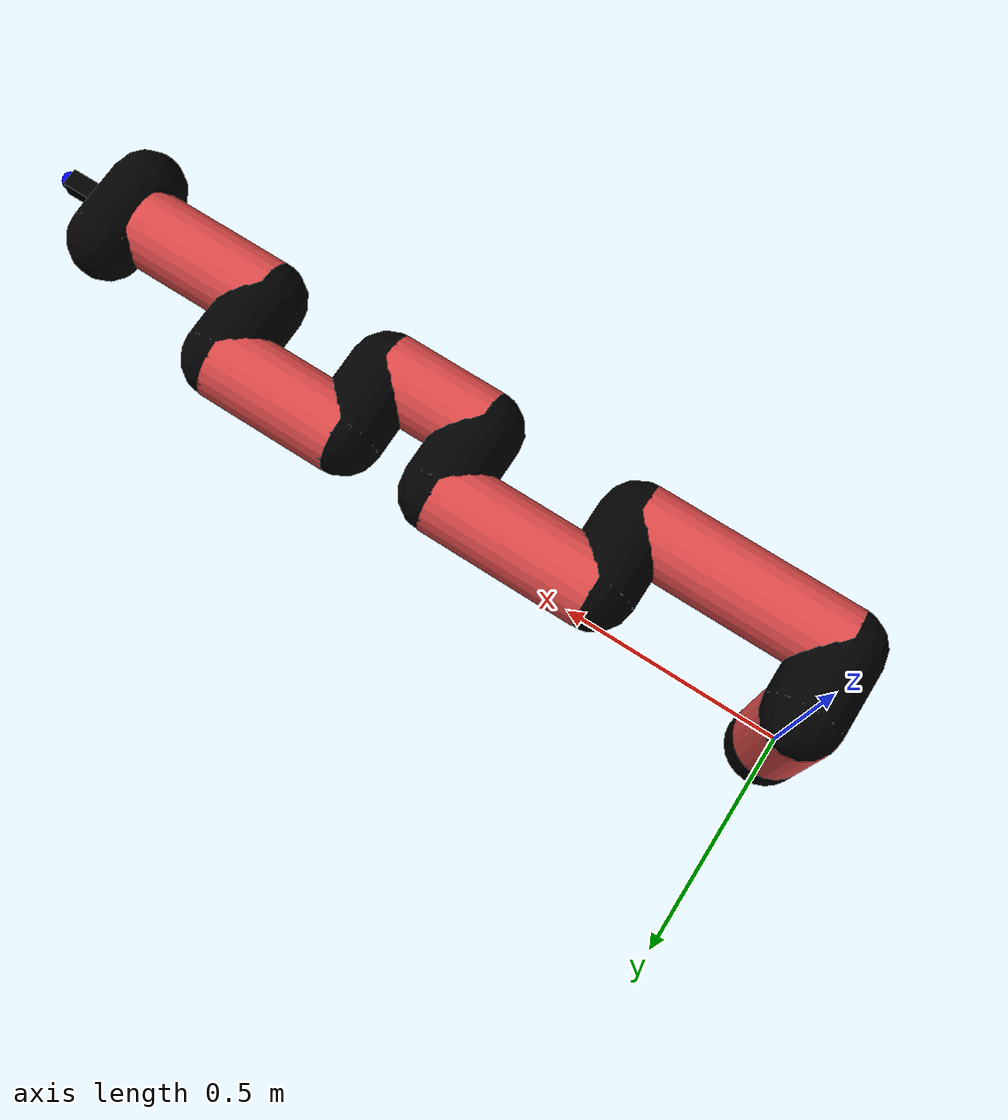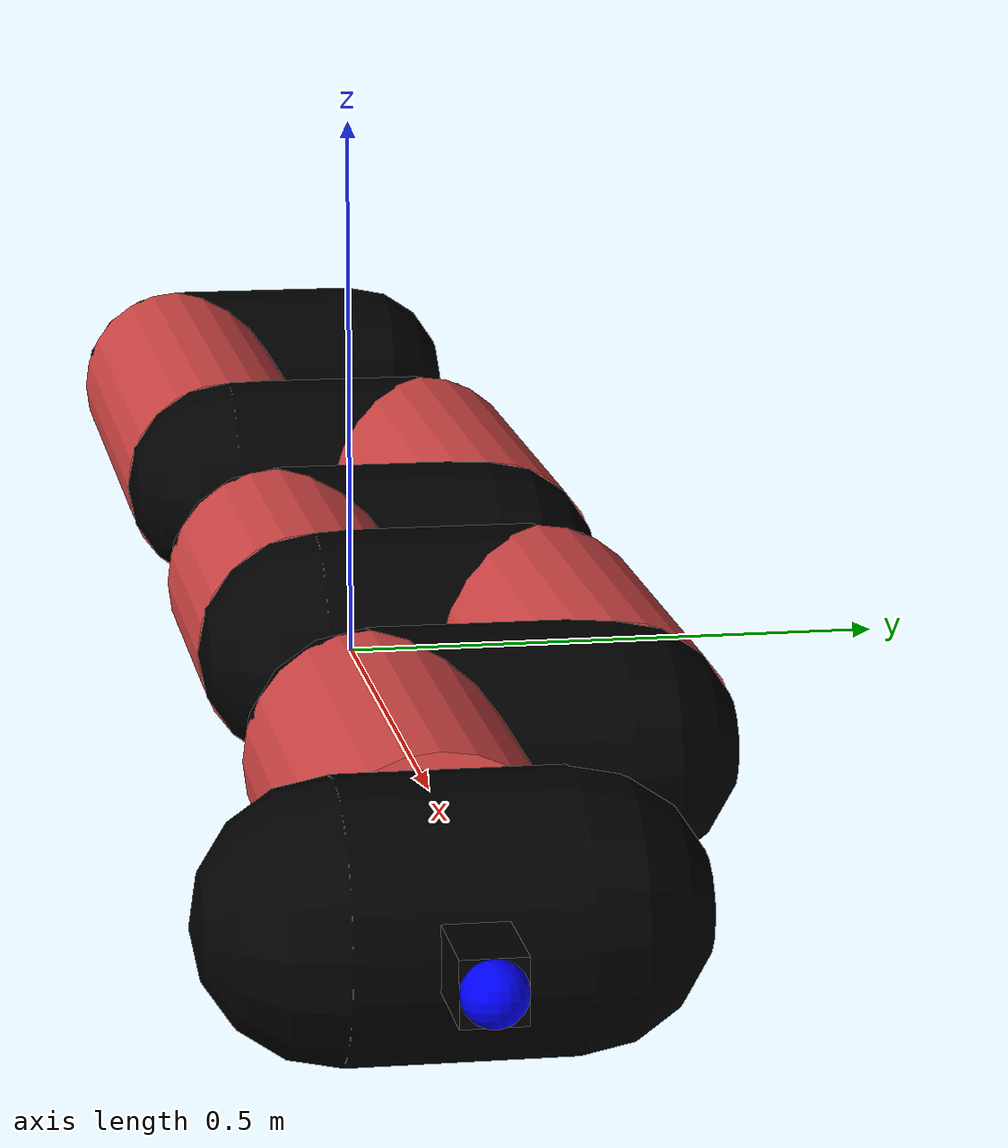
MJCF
<mujoco model="manipulator">
		<compiler angle="degree" coordinate="local" inertiafromgeom="auto" meshdir="meshes/"/>
		<option gravity="0 0 0" integrator="RK4" iterations="30" timestep="0.01"/>

		<default>
		<joint armature="1" limited="true" stiffness="10" damping="15" frictionloss="5.0"/>
		<geom conaffinity="1" condim="3" contype="1" friction=".5 .1 .1" margin="0.002"/>
		<motor ctrllimited="true"/>
		<position ctrllimited="true"/>
		</default>

		<asset>
		<texture builtin="gradient" height="100" rgb1="1.0 1.0 1.0" rgb2="1.0 1.0 1.0" type="skybox" width="100"/>
		<texture builtin="flat" height="32" name="arm_tex" rgb1="0.9 0.3 0.3" type="2d" width="32"/>
		<texture builtin="flat" height="32" name="gripper_tex" rgb1="0.0 0.0 0.0" type="cube" width="32"/>

		<material name="arm_mat" shininess="0.1" specular="0.1" texture="arm_tex"/>
		<material name="gripper_mat" shininess="1" specular="1" texture="gripper_tex"/>
		</asset>

		<worldbody>
		<light cutoff="45" diffuse=".8 .8 .8" dir="0 0.16 -1" directional="false" name="light" pos="0 -2.0 8.0" specular="0.3 0.3 0.3"/>

		<body name="base_link" pos="0 0 -0.1">
		<geom fromto="0 0 0 0 0 0.1" material="arm_mat" name="base_link" rgba="0.0 0.0 0.0 1" size="0.085" type="cylinder"/>
		</body>

		<body name="l1" pos="0 0 0">
<geom fromto="0 0 0 0 0 0.26" material="arm_mat" name="l1" rgba="0.9 0.3 0.3 1" size="0.085" type="cylinder"/>
<geom fromto="0 0 0.26 0 -0.16 0.26" material="arm_mat" name="l1_ex" rgba="0.0 0.0 0.0 1" size="0.085" type="capsule"/>
<joint axis="0 0 1" name="j1" pos="0 0 0" range="-90 90" damping="28.22" frictionloss="8.05"/>

<body name="l2" pos="0 -0.16 0.26">
<geom fromto="0 0 0 0.46 0 0" material="arm_mat" name="l2" rgba="0.9 0.3 0.3 1" size="0.085" type="cylinder"/>
<geom fromto="0.46 0 0 0.46 0.16 0" material="arm_mat" name="l2_ex" rgba="0.0 0.0 0.0 1" size="0.085" type="capsule"/>
<joint axis="0.0 1.0 0.0" name="j2" pos="0 0 0" range="-90 60" damping="29.54" frictionloss="10.1"/>

<body name="l3" pos="0.46 0.16 0">
<geom fromto="0 0 0 0.36 0 0" material="arm_mat" name="l3" rgba="0.9 0.3 0.3 1" size="0.085" type="cylinder"/>
<geom fromto="0.36 0 0 0.36 -0.16 0" material="arm_mat" name="l3_ex" rgba="0.0 0.0 0.0 1" size="0.085" type="capsule"/>
<joint axis="0.0 1.0 0.0" name="j3" pos="0 0 0" range="-30 60" damping="24.82" frictionloss="9.97"/>

<body name="l4" pos="0.36 -0.16 0">
<geom fromto="0 0 0 0.23 0 0" material="arm_mat" name="l4" rgba="0.9 0.3 0.3 1" size="0.085" type="cylinder"/>
<geom fromto="0.23 0 0 0.23 0.16 0" material="arm_mat" name="l4_ex" rgba="0.0 0.0 0.0 1" size="0.085" type="capsule"/>
<joint axis="0.0 1.0 0.0" name="j4" pos="0 0 0" range="-30 60" damping="33.07" frictionloss="9.17"/>

<body name="l5" pos="0.23 0.16 0">
<geom fromto="0 0 0 0.3 0 0" material="arm_mat" name="l5" rgba="0.9 0.3 0.3 1" size="0.085" type="cylinder"/>
<geom fromto="0.3 0 0 0.3 -0.16 0" material="arm_mat" name="l5_ex" rgba="0.0 0.0 0.0 1" size="0.085" type="capsule"/>
<joint axis="0.0 1.0 0.0" name="j5" pos="0 0 0" range="-30 60" damping="23.05" frictionloss="7.9"/>

<body name="l6" pos="0.3 -0.16 0">
<geom fromto="0 0 0 0.31 0 0" material="arm_mat" name="l6" rgba="0.9 0.3 0.3 1" size="0.085" type="cylinder"/>
<joint axis="0.0 1.0 0.0" name="j6" pos="0 0 0" range="-30 60" damping="28.57" frictionloss="8.96"/>

<body name="gripper" pos="0.31 0 0">
<geom fromto="0.05 -0.07 0 0.05 0.07 0" material="gripper_mat" name="gripper" rgba="0.0 0.0 0.0 1" size="0.085" type="capsule"/><joint axis="1 0 0" name="j7" pos="0 0 0" range="-90 90" damping="15" frictionloss="5.0"/><body name="finger" pos="0.1 0 0">
<geom fromto="0 0.0 0 0.1 0.0 0" material="gripper_mat" name="finger" rgba="0.0 0.0 0.0 1" size="0.020 0.06 0.06" type="box"/>
</body>
<site name="current" pos="0.2 0. 0.0" rgba="0. 0. 1.0 1" size="0.02" type="sphere"/>
</body>
</body>
</body>
</body>
</body>
</body>
</body>
</worldbody>
<actuator>
<motor ctrllimited="true" ctrlrange="-1.0 1.0" joint="j1" gear="95.47"/>
<motor ctrllimited="true" ctrlrange="-1.0 1.0" joint="j2" gear="77.96"/>
<motor ctrllimited="true" ctrlrange="-1.0 1.0" joint="j3" gear="66.24"/>
<motor ctrllimited="true" ctrlrange="-1.0 1.0" joint="j4" gear="89.61"/>
<motor ctrllimited="true" ctrlrange="-1.0 1.0" joint="j5" gear="61.07"/>
<motor ctrllimited="true" ctrlrange="-1.0 1.0" joint="j6" gear="72.01"/>
<motor ctrllimited="true" ctrlrange="-1.0 1.0" joint="j7" gear="80"/>
</actuator>
</mujoco>
